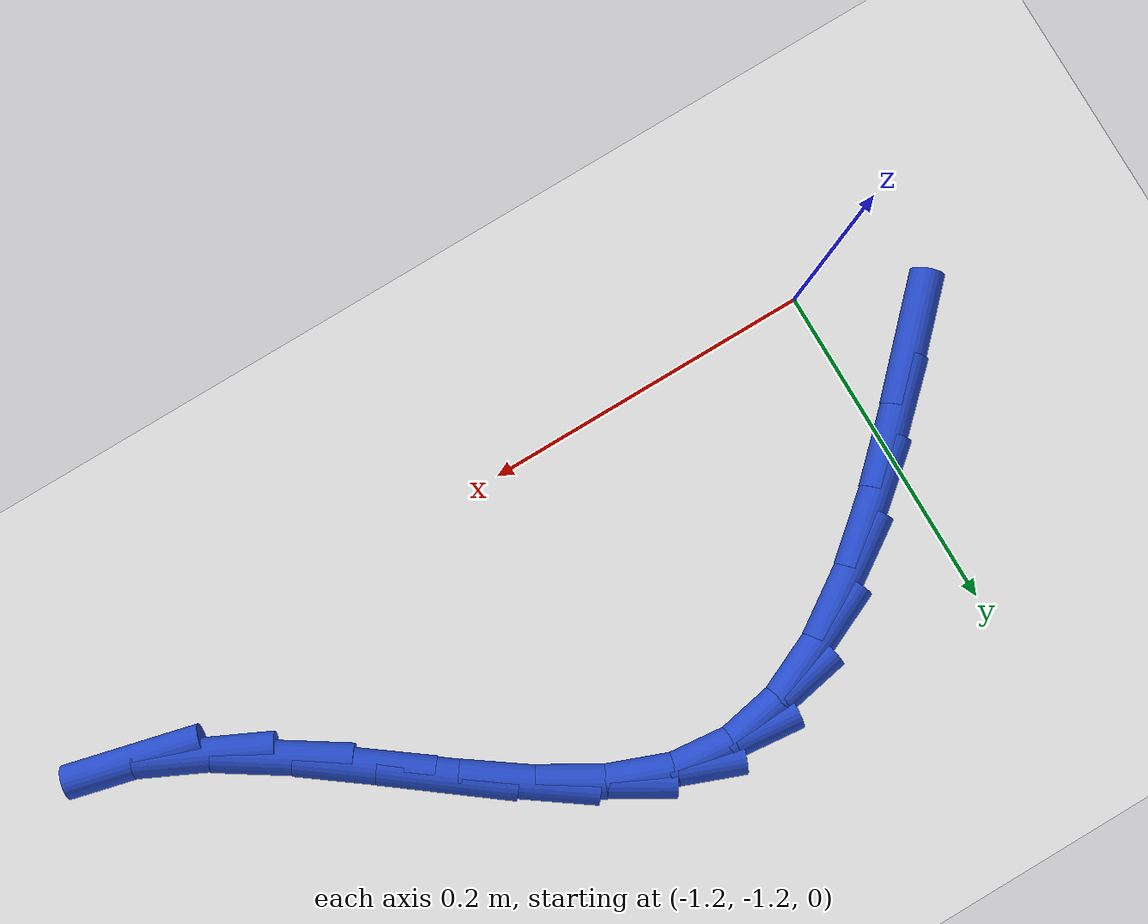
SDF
<sdf version="1.6">
 <world name="default">
  <model name="ground_plane">
   <static>1</static>
   <link name="link">
    <collision name="collision">
     <geometry><plane><normal>0 0 1</normal><size>100 100</size></plane></geometry>
     <surface><friction><ode><mu>100</mu><mu2>50</mu2></ode></friction></surface>
    </collision>
    <visual name="visual">
     <cast_shadows>0</cast_shadows>
     <geometry><plane><normal>0 0 1</normal><size>100 100</size></plane></geometry>
     <material>
      <script><uri>file://media/materials/scripts/gazebo.material</uri><name>Gazebo/WhiteGlow</name></script>
     </material>
    </visual>
   </link>
  </model>
  <model name="line">
   <link name="link_133">
    <pose>-1.2432508556933046 -1.144349063811435 0.01 0 1.57 0.7970877367211837</pose>
    <collision name="collision">
     <geometry><cylinder><radius>0.01</radius><length>0.08</length></cylinder></geometry>
    </collision>
    <visual name="visual">
     <material>
      <script><name>Gazebo/Blue</name><uri>file://media/materials/scripts/gazebo.material</uri></script>
     </material>
     <geometry><cylinder><radius>0.01</radius><length>0.08</length></cylinder></geometry>
    </visual>
   </link>
   <link name="link_134">
    <pose>-1.2090082145420635 -1.1092963526604853 0.01 0 1.57 0.7643940714395243</pose>
    <collision name="collision">
     <geometry><cylinder><radius>0.01</radius><length>0.08</length></cylinder></geometry>
    </collision>
    <visual name="visual">
     <material>
      <script><name>Gazebo/Blue</name><uri>file://media/materials/scripts/gazebo.material</uri></script>
     </material>
     <geometry><cylinder><radius>0.01</radius><length>0.08</length></cylinder></geometry>
    </visual>
   </link>
   <link name="link_135">
    <pose>-1.1748474499183106 -1.0765413007275126 0.01 0 1.57 0.6993001652913633</pose>
    <collision name="collision">
     <geometry><cylinder><radius>0.01</radius><length>0.08</length></cylinder></geometry>
    </collision>
    <visual name="visual">
     <material>
      <script><name>Gazebo/Blue</name><uri>file://media/materials/scripts/gazebo.material</uri></script>
     </material>
     <geometry><cylinder><radius>0.01</radius><length>0.08</length></cylinder></geometry>
    </visual>
   </link>
   <link name="link_136">
    <pose>-1.1406198164761987 -1.0477526862937925 0.01 0 1.57 0.5918365463498757</pose>
    <collision name="collision">
     <geometry><cylinder><radius>0.01</radius><length>0.08</length></cylinder></geometry>
    </collision>
    <visual name="visual">
     <material>
      <script><name>Gazebo/Blue</name><uri>file://media/materials/scripts/gazebo.material</uri></script>
     </material>
     <geometry><cylinder><radius>0.01</radius><length>0.08</length></cylinder></geometry>
    </visual>
   </link>
   <link name="link_137">
    <pose>-1.1061765688698788 -1.024599287640598 0.01 0 1.57 0.4272883773273107</pose>
    <collision name="collision">
     <geometry><cylinder><radius>0.01</radius><length>0.08</length></cylinder></geometry>
    </collision>
    <visual name="visual">
     <material>
      <script><name>Gazebo/Blue</name><uri>file://media/materials/scripts/gazebo.material</uri></script>
     </material>
     <geometry><cylinder><radius>0.01</radius><length>0.08</length></cylinder></geometry>
    </visual>
   </link>
   <link name="link_138">
    <pose>-1.0713689617535043 -1.0087498830492052 0.01 0 1.57 0.19228578445593705</pose>
    <collision name="collision">
     <geometry><cylinder><radius>0.01</radius><length>0.08</length></cylinder></geometry>
    </collision>
    <visual name="visual">
     <material>
      <script><name>Gazebo/Blue</name><uri>file://media/materials/scripts/gazebo.material</uri></script>
     </material>
     <geometry><cylinder><radius>0.01</radius><length>0.08</length></cylinder></geometry>
    </visual>
   </link>
   <link name="link_139">
    <pose>-1.0360482497812262 -1.0018732508008872 0.01 0 1.57 -0.10306113269668579</pose>
    <collision name="collision">
     <geometry><cylinder><radius>0.01</radius><length>0.08</length></cylinder></geometry>
    </collision>
    <visual name="visual">
     <material>
      <script><name>Gazebo/Blue</name><uri>file://media/materials/scripts/gazebo.material</uri></script>
     </material>
     <geometry><cylinder><radius>0.01</radius><length>0.08</length></cylinder></geometry>
    </visual>
   </link>
   <link name="link_140">
    <pose>-1.000069171899601 -1.0055944797912435 0.01 0 1.57 -0.3675396377167672</pose>
    <collision name="collision">
     <geometry><cylinder><radius>0.01</radius><length>0.08</length></cylinder></geometry>
    </collision>
    <visual name="visual">
     <material>
      <script><name>Gazebo/Blue</name><uri>file://media/materials/scripts/gazebo.material</uri></script>
     </material>
     <geometry><cylinder><radius>0.01</radius><length>0.08</length></cylinder></geometry>
    </visual>
   </link>
   <link name="link_141">
    <pose>-0.9634330483353235 -1.0197006828396598 0.01 0 1.57 -0.5314484073380417</pose>
    <collision name="collision">
     <geometry><cylinder><radius>0.01</radius><length>0.08</length></cylinder></geometry>
    </collision>
    <visual name="visual">
     <material>
      <script><name>Gazebo/Blue</name><uri>file://media/materials/scripts/gazebo.material</uri></script>
     </material>
     <geometry><cylinder><radius>0.01</radius><length>0.08</length></cylinder></geometry>
    </visual>
   </link>
   <link name="link_142">
    <pose>-0.9263383146146389 -1.0415073528936856 0.01 0 1.57 -0.619833451055728</pose>
    <collision name="collision">
     <geometry><cylinder><radius>0.01</radius><length>0.08</length></cylinder></geometry>
    </collision>
    <visual name="visual">
     <material>
      <script><name>Gazebo/Blue</name><uri>file://media/materials/scripts/gazebo.material</uri></script>
     </material>
     <geometry><cylinder><radius>0.01</radius><length>0.08</length></cylinder></geometry>
    </visual>
   </link>
   <link name="link_143">
    <pose>-0.8889972761596632 -1.0681560689006602 0.01 0 1.57 -0.653714344119677</pose>
    <collision name="collision">
     <geometry><cylinder><radius>0.01</radius><length>0.08</length></cylinder></geometry>
    </collision>
    <visual name="visual">
     <material>
      <script><name>Gazebo/Blue</name><uri>file://media/materials/scripts/gazebo.material</uri></script>
     </material>
     <geometry><cylinder><radius>0.01</radius><length>0.08</length></cylinder></geometry>
    </visual>
   </link>
   <link name="link_144">
    <pose>-0.85162223839251 -1.096788409807924 0.01 0 1.57 -0.641087871162406</pose>
    <collision name="collision">
     <geometry><cylinder><radius>0.01</radius><length>0.08</length></cylinder></geometry>
    </collision>
    <visual name="visual">
     <material>
      <script><name>Gazebo/Blue</name><uri>file://media/materials/scripts/gazebo.material</uri></script>
     </material>
     <geometry><cylinder><radius>0.01</radius><length>0.08</length></cylinder></geometry>
    </visual>
   </link>
   <link name="link_145">
    <pose>-0.8144255067352931 -1.124545954562817 0.01 0 1.57 -0.57828948319322</pose>
    <collision name="collision">
     <geometry><cylinder><radius>0.01</radius><length>0.08</length></cylinder></geometry>
    </collision>
    <visual name="visual">
     <material>
      <script><name>Gazebo/Blue</name><uri>file://media/materials/scripts/gazebo.material</uri></script>
     </material>
     <geometry><cylinder><radius>0.01</radius><length>0.08</length></cylinder></geometry>
    </visual>
   </link>
   <link name="link_146">
    <pose>-0.7776193866101269 -1.1485702821126793 0.01 0 1.57 -0.44876293097564307</pose>
    <collision name="collision">
     <geometry><cylinder><radius>0.01</radius><length>0.08</length></cylinder></geometry>
    </collision>
    <visual name="visual">
     <material>
      <script><name>Gazebo/Blue</name><uri>file://media/materials/scripts/gazebo.material</uri></script>
     </material>
     <geometry><cylinder><radius>0.01</radius><length>0.08</length></cylinder></geometry>
    </visual>
   </link>
   <link name="link_147">
    <pose>-0.7414161666877933 -1.16600322752963 0.01 0 1.57 -0.24129549363613143</pose>
    <collision name="collision">
     <geometry><cylinder><radius>0.01</radius><length>0.08</length></cylinder></geometry>
    </collision>
    <visual name="visual">
     <material>
      <script><name>Gazebo/Blue</name><uri>file://media/materials/scripts/gazebo.material</uri></script>
     </material>
     <geometry><cylinder><radius>0.01</radius><length>0.08</length></cylinder></geometry>
    </visual>
   </link>
  </model>
 </world>
</sdf>
